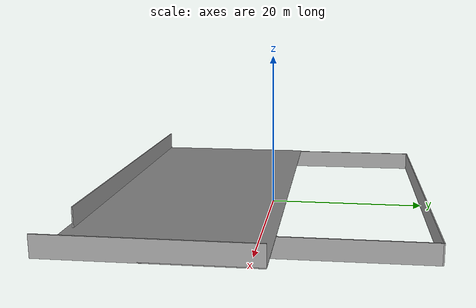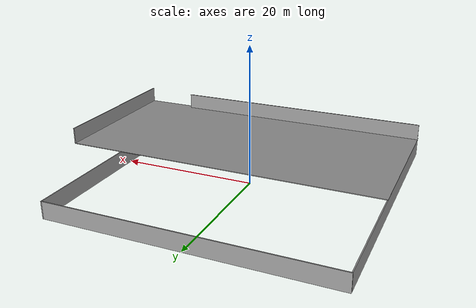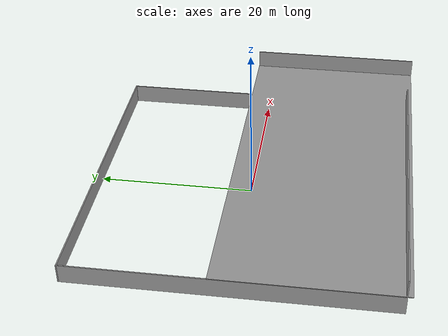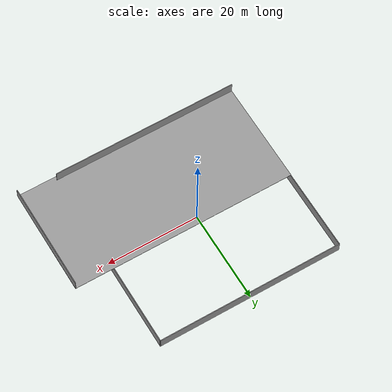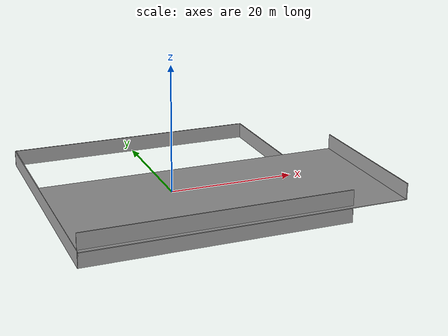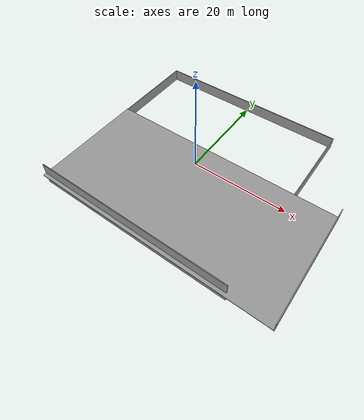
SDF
<?xml version='1.0'?>
<sdf version='1.6'>
  <model name='40X40'>
    <pose frame=''>0 0 0 0 -0 0</pose>
    <link name='Floor_4'>
      <collision name='Floor_4_Collision'>
        <geometry>
          <box>
            <size>48.5098 23.25 0.1</size>
          </box>
        </geometry>
        <pose frame=''>0 0 0.05 0 -0 0</pose>
      </collision>
      <visual name='Floor_4_Visual'>
        <pose frame=''>0 0 0.05 0 -0 0</pose>
        <geometry>
          <box>
            <size>48.5098 23.25 0.1</size>
          </box>
        </geometry>
        <material>
          <script>
            <uri>file://media/materials/scripts/gazebo.material</uri>
            <name>Gazebo/Grey</name>
          </script>
          <ambient>1 1 1 1</ambient>
        </material>
      </visual>
      <pose frame=''>4.1799 -9.13396 2.5 0 -0 0</pose>
    </link>
    <link name='Wall_31'>
      <collision name='Wall_31_Collision'>
        <geometry>
          <box>
            <size>40.15 0.15 2.5</size>
          </box>
        </geometry>
        <pose frame=''>0 0 1.25 0 -0 0</pose>
      </collision>
      <visual name='Wall_31_Visual'>
        <pose frame=''>0 0 1.25 0 -0 0</pose>
        <geometry>
          <box>
            <size>40.15 0.15 2.5</size>
          </box>
        </geometry>
        <material>
          <script>
            <uri>file://media/materials/scripts/gazebo.material</uri>
            <name>Gazebo/Grey</name>
          </script>
          <ambient>1 1 1 1</ambient>
        </material>
      </visual>
      <pose frame=''>0 -20 0 0 -0 0</pose>
    </link>
    <link name='Wall_33'>
      <collision name='Wall_33_Collision'>
        <geometry>
          <box>
            <size>40.15 0.15 2.5</size>
          </box>
        </geometry>
        <pose frame=''>0 0 1.25 0 -0 0</pose>
      </collision>
      <visual name='Wall_33_Visual'>
        <pose frame=''>0 0 1.25 0 -0 0</pose>
        <geometry>
          <box>
            <size>40.15 0.15 2.5</size>
          </box>
        </geometry>
        <material>
          <script>
            <uri>file://media/materials/scripts/gazebo.material</uri>
            <name>Gazebo/Grey</name>
          </script>
          <ambient>1 1 1 1</ambient>
        </material>
      </visual>
      <pose frame=''>20 0 0 0 -0 1.5708</pose>
    </link>
    <link name='Wall_35'>
      <collision name='Wall_35_Collision'>
        <geometry>
          <box>
            <size>40.15 0.15 2.5</size>
          </box>
        </geometry>
        <pose frame=''>0 0 1.25 0 -0 0</pose>
      </collision>
      <visual name='Wall_35_Visual'>
        <pose frame=''>0 0 1.25 0 -0 0</pose>
        <geometry>
          <box>
            <size>40.15 0.15 2.5</size>
          </box>
        </geometry>
        <material>
          <script>
            <uri>file://media/materials/scripts/gazebo.material</uri>
            <name>Gazebo/Grey</name>
          </script>
          <ambient>1 1 1 1</ambient>
        </material>
      </visual>
      <pose frame=''>0 -20 2.5 0 -0 0</pose>
    </link>
    <link name='Wall_36'>
      <collision name='Wall_36_Collision'>
        <geometry>
          <box>
            <size>23.25 0.15 2.5</size>
          </box>
        </geometry>
        <pose frame=''>0 0 1.25 0 -0 0</pose>
      </collision>
      <visual name='Wall_36_Visual'>
        <pose frame=''>0 0 1.25 0 -0 0</pose>
        <geometry>
          <box>
            <size>23.25 0.15 2.5</size>
          </box>
        </geometry>
        <material>
          <script>
            <uri>file://media/materials/scripts/gazebo.material</uri>
            <name>Gazebo/Grey</name>
          </script>
          <ambient>1 1 1 1</ambient>
        </material>
      </visual>
      <pose frame=''>28.3598 -9.13396 2.5 0 -0 1.5708</pose>
    </link>
    <link name='Wall_37'>
      <collision name='Wall_37_Collision'>
        <geometry>
          <box>
            <size>40.15 0.15 2.5</size>
          </box>
        </geometry>
        <pose frame=''>0 0 1.25 0 -0 0</pose>
      </collision>
      <visual name='Wall_37_Visual'>
        <pose frame=''>0 0 1.25 0 -0 0</pose>
        <geometry>
          <box>
            <size>40.15 0.15 2.5</size>
          </box>
        </geometry>
        <material>
          <script>
            <uri>file://media/materials/scripts/gazebo.material</uri>
            <name>Gazebo/Grey</name>
          </script>
          <ambient>1 1 1 1</ambient>
        </material>
      </visual>
      <pose frame=''>0 20 0 0 -0 3.14159</pose>
    </link>
    <link name='Wall_40'>
      <collision name='Wall_40_Collision'>
        <geometry>
          <box>
            <size>40.15 0.15 2.5</size>
          </box>
        </geometry>
        <pose frame=''>0 0 1.25 0 -0 0</pose>
      </collision>
      <visual name='Wall_40_Visual'>
        <pose frame=''>0 0 1.25 0 -0 0</pose>
        <geometry>
          <box>
            <size>40.15 0.15 2.5</size>
          </box>
        </geometry>
        <material>
          <script>
            <uri>file://media/materials/scripts/gazebo.material</uri>
            <name>Gazebo/Grey</name>
          </script>
          <ambient>1 1 1 1</ambient>
        </material>
      </visual>
      <pose frame=''>-20 0 0 0 0 -1.5708</pose>
    </link>
    <static>1</static>
  </model>
</sdf>
